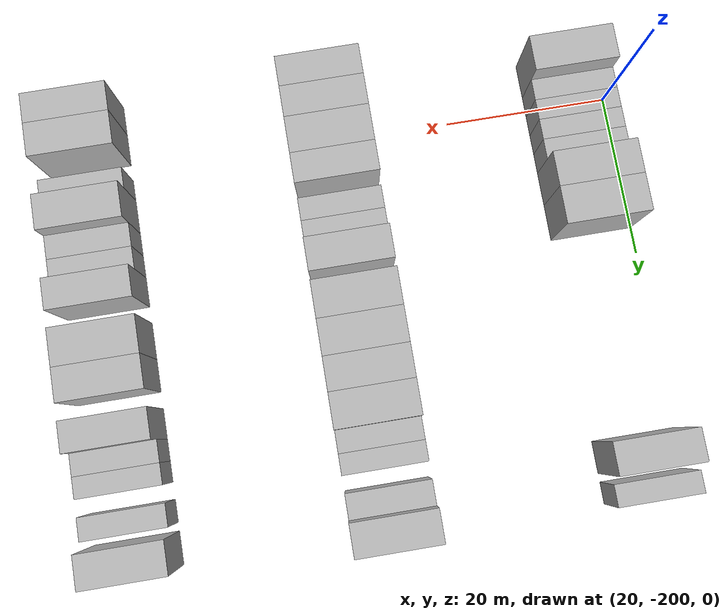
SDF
<sdf version="1.6">
 <world name="default">
  <model name="building_63">
   <static>1</static>
   <pose>25.0000 -204.0271 0 0.000000 0.000000 0.000000</pose>
   <link name="link">
    <pose>0 0 4.50 0 0 0</pose>
    <collision name="collision"><geometry><box><size>10.0000 4.2218 9.0000</size></box></geometry></collision>
    <visual name="visual">
     <cast_shadows>0</cast_shadows>
     <geometry><box><size>10.0000 4.2218 9.0000</size></box></geometry>
     <material>
      <script>
       <uri>model://HANNAS_wall/materials/scripts</uri>
       <uri>model://HANNAS_wall/materials/textures</uri>
       <name>vrc/HANNAS_wall</name>
      </script>
     </material>
    </visual>
   </link>
  </model>
  <model name="building_64">
   <static>1</static>
   <pose>25.0000 -200.6370 0 0.000000 0.000000 0.000000</pose>
   <link name="link">
    <pose>0 0 3.00 0 0 0</pose>
    <collision name="collision"><geometry><box><size>10.0000 2.5585 6.0000</size></box></geometry></collision>
    <visual name="visual">
     <cast_shadows>0</cast_shadows>
     <geometry><box><size>10.0000 2.5585 6.0000</size></box></geometry>
     <material>
      <script>
       <uri>model://HANNAS_wall/materials/scripts</uri>
       <uri>model://HANNAS_wall/materials/textures</uri>
       <name>vrc/HANNAS_wall</name>
      </script>
     </material>
    </visual>
   </link>
  </model>
  <model name="building_65">
   <static>1</static>
   <pose>25.0000 -198.1208 0 0.000000 0.000000 0.000000</pose>
   <link name="link">
    <pose>0 0 3.00 0 0 0</pose>
    <collision name="collision"><geometry><box><size>10.0000 2.4739 6.0000</size></box></geometry></collision>
    <visual name="visual">
     <cast_shadows>0</cast_shadows>
     <geometry><box><size>10.0000 2.4739 6.0000</size></box></geometry>
     <material>
      <script>
       <uri>model://HANNAS_wall/materials/scripts</uri>
       <uri>model://HANNAS_wall/materials/textures</uri>
       <name>vrc/HANNAS_wall</name>
      </script>
     </material>
    </visual>
   </link>
  </model>
  <model name="building_66">
   <static>1</static>
   <pose>25.0000 -195.6406 0 0.000000 0.000000 0.000000</pose>
   <link name="link">
    <pose>0 0 3.00 0 0 0</pose>
    <collision name="collision"><geometry><box><size>10.0000 2.4864 6.0000</size></box></geometry></collision>
    <visual name="visual">
     <cast_shadows>0</cast_shadows>
     <geometry><box><size>10.0000 2.4864 6.0000</size></box></geometry>
     <material>
      <script>
       <uri>model://HANNAS_wall/materials/scripts</uri>
       <uri>model://HANNAS_wall/materials/textures</uri>
       <name>vrc/HANNAS_wall</name>
      </script>
     </material>
    </visual>
   </link>
  </model>
  <model name="building_67">
   <static>1</static>
   <pose>25.0000 -193.1570 0 0.000000 0.000000 0.000000</pose>
   <link name="link">
    <pose>0 0 3.00 0 0 0</pose>
    <collision name="collision"><geometry><box><size>10.0000 2.4807 6.0000</size></box></geometry></collision>
    <visual name="visual">
     <cast_shadows>0</cast_shadows>
     <geometry><box><size>10.0000 2.4807 6.0000</size></box></geometry>
     <material>
      <script>
       <uri>model://HANNAS_wall/materials/scripts</uri>
       <uri>model://HANNAS_wall/materials/textures</uri>
       <name>vrc/HANNAS_wall</name>
      </script>
     </material>
    </visual>
   </link>
  </model>
  <model name="building_68">
   <static>1</static>
   <pose>25.0000 -189.8249 0 0.000000 0.000000 0.000000</pose>
   <link name="link">
    <pose>0 0 4.50 0 0 0</pose>
    <collision name="collision"><geometry><box><size>10.0000 4.1835 9.0000</size></box></geometry></collision>
    <visual name="visual">
     <cast_shadows>0</cast_shadows>
     <geometry><box><size>10.0000 4.1835 9.0000</size></box></geometry>
     <material>
      <script>
       <uri>model://HANNAS_wall/materials/scripts</uri>
       <uri>model://HANNAS_wall/materials/textures</uri>
       <name>vrc/HANNAS_wall</name>
      </script>
     </material>
    </visual>
   </link>
  </model>
  <model name="building_69">
   <static>1</static>
   <pose>25.0000 -185.4884 0 0.000000 0.000000 0.000000</pose>
   <link name="link">
    <pose>0 0 4.50 0 0 0</pose>
    <collision name="collision"><geometry><box><size>10.0000 4.4895 9.0000</size></box></geometry></collision>
    <visual name="visual">
     <cast_shadows>0</cast_shadows>
     <geometry><box><size>10.0000 4.4895 9.0000</size></box></geometry>
     <material>
      <script>
       <uri>model://HANNAS_wall/materials/scripts</uri>
       <uri>model://HANNAS_wall/materials/textures</uri>
       <name>vrc/HANNAS_wall</name>
      </script>
     </material>
    </visual>
   </link>
  </model>
  <model name="building_70">
   <static>1</static>
   <pose>25.0000 -156.4802 0 0.000000 0.000000 0.000000</pose>
   <link name="link">
    <pose>0 0 4.50 0 0 0</pose>
    <collision name="collision"><geometry><box><size>10.0000 3.8423 9.0000</size></box></geometry></collision>
    <visual name="visual">
     <cast_shadows>0</cast_shadows>
     <geometry><box><size>10.0000 3.8423 9.0000</size></box></geometry>
     <material>
      <script>
       <uri>model://HANNAS_wall/materials/scripts</uri>
       <uri>model://HANNAS_wall/materials/textures</uri>
       <name>vrc/HANNAS_wall</name>
      </script>
     </material>
    </visual>
   </link>
  </model>
  <model name="building_71">
   <static>1</static>
   <pose>25.0000 -152.2642 0 0.000000 0.000000 0.000000</pose>
   <link name="link">
    <pose>0 0 3.00 0 0 0</pose>
    <collision name="collision"><geometry><box><size>10.0000 2.5897 6.0000</size></box></geometry></collision>
    <visual name="visual">
     <cast_shadows>0</cast_shadows>
     <geometry><box><size>10.0000 2.5897 6.0000</size></box></geometry>
     <material>
      <script>
       <uri>model://HANNAS_wall/materials/scripts</uri>
       <uri>model://HANNAS_wall/materials/textures</uri>
       <name>vrc/HANNAS_wall</name>
      </script>
     </material>
    </visual>
   </link>
  </model>
  <model name="building_278">
   <static>1</static>
   <pose>55.0000 -206.6956 0 0.000000 0.000000 0.000000</pose>
   <link name="link">
    <pose>0 0 4.50 0 0 0</pose>
    <collision name="collision"><geometry><box><size>10.0000 3.6923 9.0000</size></box></geometry></collision>
    <visual name="visual">
     <cast_shadows>0</cast_shadows>
     <geometry><box><size>10.0000 3.6923 9.0000</size></box></geometry>
     <material>
      <script>
       <uri>model://HANNAS_wall/materials/scripts</uri>
       <uri>model://HANNAS_wall/materials/textures</uri>
       <name>vrc/HANNAS_wall</name>
      </script>
     </material>
    </visual>
   </link>
  </model>
  <model name="building_279">
   <static>1</static>
   <pose>55.0000 -202.9609 0 0.000000 0.000000 0.000000</pose>
   <link name="link">
    <pose>0 0 4.50 0 0 0</pose>
    <collision name="collision"><geometry><box><size>10.0000 3.7769 9.0000</size></box></geometry></collision>
    <visual name="visual">
     <cast_shadows>0</cast_shadows>
     <geometry><box><size>10.0000 3.7769 9.0000</size></box></geometry>
     <material>
      <script>
       <uri>model://HANNAS_wall/materials/scripts</uri>
       <uri>model://HANNAS_wall/materials/textures</uri>
       <name>vrc/HANNAS_wall</name>
      </script>
     </material>
    </visual>
   </link>
  </model>
  <model name="building_280">
   <static>1</static>
   <pose>55.0000 -198.8731 0 0.000000 0.000000 0.000000</pose>
   <link name="link">
    <pose>0 0 4.50 0 0 0</pose>
    <collision name="collision"><geometry><box><size>10.0000 4.3986 9.0000</size></box></geometry></collision>
    <visual name="visual">
     <cast_shadows>0</cast_shadows>
     <geometry><box><size>10.0000 4.3986 9.0000</size></box></geometry>
     <material>
      <script>
       <uri>model://HANNAS_wall/materials/scripts</uri>
       <uri>model://HANNAS_wall/materials/textures</uri>
       <name>vrc/HANNAS_wall</name>
      </script>
     </material>
    </visual>
   </link>
  </model>
  <model name="building_281">
   <static>1</static>
   <pose>55.0000 -194.8589 0 0.000000 0.000000 0.000000</pose>
   <link name="link">
    <pose>0 0 4.50 0 0 0</pose>
    <collision name="collision"><geometry><box><size>10.0000 3.6298 9.0000</size></box></geometry></collision>
    <visual name="visual">
     <cast_shadows>0</cast_shadows>
     <geometry><box><size>10.0000 3.6298 9.0000</size></box></geometry>
     <material>
      <script>
       <uri>model://HANNAS_wall/materials/scripts</uri>
       <uri>model://HANNAS_wall/materials/textures</uri>
       <name>vrc/HANNAS_wall</name>
      </script>
     </material>
    </visual>
   </link>
  </model>
  <model name="building_282">
   <static>1</static>
   <pose>55.0000 -190.6634 0 0.000000 0.000000 0.000000</pose>
   <link name="link">
    <pose>0 0 3.00 0 0 0</pose>
    <collision name="collision"><geometry><box><size>10.0000 2.7612 6.0000</size></box></geometry></collision>
    <visual name="visual">
     <cast_shadows>0</cast_shadows>
     <geometry><box><size>10.0000 2.7612 6.0000</size></box></geometry>
     <material>
      <script>
       <uri>model://HANNAS_wall/materials/scripts</uri>
       <uri>model://HANNAS_wall/materials/textures</uri>
       <name>vrc/HANNAS_wall</name>
      </script>
     </material>
    </visual>
   </link>
  </model>
  <model name="building_283">
   <static>1</static>
   <pose>55.0000 -187.9554 0 0.000000 0.000000 0.000000</pose>
   <link name="link">
    <pose>0 0 3.00 0 0 0</pose>
    <collision name="collision"><geometry><box><size>10.0000 2.6546 6.0000</size></box></geometry></collision>
    <visual name="visual">
     <cast_shadows>0</cast_shadows>
     <geometry><box><size>10.0000 2.6546 6.0000</size></box></geometry>
     <material>
      <script>
       <uri>model://HANNAS_wall/materials/scripts</uri>
       <uri>model://HANNAS_wall/materials/textures</uri>
       <name>vrc/HANNAS_wall</name>
      </script>
     </material>
    </visual>
   </link>
  </model>
  <model name="building_284">
   <static>1</static>
   <pose>55.0000 -184.6296 0 0.000000 0.000000 0.000000</pose>
   <link name="link">
    <pose>0 0 4.50 0 0 0</pose>
    <collision name="collision"><geometry><box><size>10.0000 3.9971 9.0000</size></box></geometry></collision>
    <visual name="visual">
     <cast_shadows>0</cast_shadows>
     <geometry><box><size>10.0000 3.9971 9.0000</size></box></geometry>
     <material>
      <script>
       <uri>model://HANNAS_wall/materials/scripts</uri>
       <uri>model://HANNAS_wall/materials/textures</uri>
       <name>vrc/HANNAS_wall</name>
      </script>
     </material>
    </visual>
   </link>
  </model>
  <model name="building_285">
   <static>1</static>
   <pose>55.0000 -179.3995 0 0.000000 0.000000 0.000000</pose>
   <link name="link">
    <pose>0 0 4.50 0 0 0</pose>
    <collision name="collision"><geometry><box><size>10.0000 4.4630 9.0000</size></box></geometry></collision>
    <visual name="visual">
     <cast_shadows>0</cast_shadows>
     <geometry><box><size>10.0000 4.4630 9.0000</size></box></geometry>
     <material>
      <script>
       <uri>model://HANNAS_wall/materials/scripts</uri>
       <uri>model://HANNAS_wall/materials/textures</uri>
       <name>vrc/HANNAS_wall</name>
      </script>
     </material>
    </visual>
   </link>
  </model>
  <model name="building_286">
   <static>1</static>
   <pose>55.0000 -175.0278 0 0.000000 0.000000 0.000000</pose>
   <link name="link">
    <pose>0 0 4.50 0 0 0</pose>
    <collision name="collision"><geometry><box><size>10.0000 4.2806 9.0000</size></box></geometry></collision>
    <visual name="visual">
     <cast_shadows>0</cast_shadows>
     <geometry><box><size>10.0000 4.2806 9.0000</size></box></geometry>
     <material>
      <script>
       <uri>model://HANNAS_wall/materials/scripts</uri>
       <uri>model://HANNAS_wall/materials/textures</uri>
       <name>vrc/HANNAS_wall</name>
      </script>
     </material>
    </visual>
   </link>
  </model>
  <model name="building_287">
   <static>1</static>
   <pose>55.0000 -170.8744 0 0.000000 0.000000 0.000000</pose>
   <link name="link">
    <pose>0 0 4.50 0 0 0</pose>
    <collision name="collision"><geometry><box><size>10.0000 4.0261 9.0000</size></box></geometry></collision>
    <visual name="visual">
     <cast_shadows>0</cast_shadows>
     <geometry><box><size>10.0000 4.0261 9.0000</size></box></geometry>
     <material>
      <script>
       <uri>model://HANNAS_wall/materials/scripts</uri>
       <uri>model://HANNAS_wall/materials/textures</uri>
       <name>vrc/HANNAS_wall</name>
      </script>
     </material>
    </visual>
   </link>
  </model>
  <model name="building_288">
   <static>1</static>
   <pose>55.0000 -166.7470 0 0.000000 0.000000 0.000000</pose>
   <link name="link">
    <pose>0 0 4.50 0 0 0</pose>
    <collision name="collision"><geometry><box><size>10.0000 4.2286 9.0000</size></box></geometry></collision>
    <visual name="visual">
     <cast_shadows>0</cast_shadows>
     <geometry><box><size>10.0000 4.2286 9.0000</size></box></geometry>
     <material>
      <script>
       <uri>model://HANNAS_wall/materials/scripts</uri>
       <uri>model://HANNAS_wall/materials/textures</uri>
       <name>vrc/HANNAS_wall</name>
      </script>
     </material>
    </visual>
   </link>
  </model>
  <model name="building_289">
   <static>1</static>
   <pose>55.0000 -163.2915 0 0.000000 0.000000 0.000000</pose>
   <link name="link">
    <pose>0 0 3.00 0 0 0</pose>
    <collision name="collision"><geometry><box><size>10.0000 2.6824 6.0000</size></box></geometry></collision>
    <visual name="visual">
     <cast_shadows>0</cast_shadows>
     <geometry><box><size>10.0000 2.6824 6.0000</size></box></geometry>
     <material>
      <script>
       <uri>model://HANNAS_wall/materials/scripts</uri>
       <uri>model://HANNAS_wall/materials/textures</uri>
       <name>vrc/HANNAS_wall</name>
      </script>
     </material>
    </visual>
   </link>
  </model>
  <model name="building_290">
   <static>1</static>
   <pose>55.0000 -160.7239 0 0.000000 0.000000 0.000000</pose>
   <link name="link">
    <pose>0 0 3.00 0 0 0</pose>
    <collision name="collision"><geometry><box><size>10.0000 2.4530 6.0000</size></box></geometry></collision>
    <visual name="visual">
     <cast_shadows>0</cast_shadows>
     <geometry><box><size>10.0000 2.4530 6.0000</size></box></geometry>
     <material>
      <script>
       <uri>model://HANNAS_wall/materials/scripts</uri>
       <uri>model://HANNAS_wall/materials/textures</uri>
       <name>vrc/HANNAS_wall</name>
      </script>
     </material>
    </visual>
   </link>
  </model>
  <model name="building_291">
   <static>1</static>
   <pose>55.0000 -156.0049 0 0.000000 0.000000 0.000000</pose>
   <link name="link">
    <pose>0 0 3.00 0 0 0</pose>
    <collision name="collision"><geometry><box><size>10.0000 2.9851 6.0000</size></box></geometry></collision>
    <visual name="visual">
     <cast_shadows>0</cast_shadows>
     <geometry><box><size>10.0000 2.9851 6.0000</size></box></geometry>
     <material>
      <script>
       <uri>model://HANNAS_wall/materials/scripts</uri>
       <uri>model://HANNAS_wall/materials/textures</uri>
       <name>vrc/HANNAS_wall</name>
      </script>
     </material>
    </visual>
   </link>
  </model>
  <model name="building_292">
   <static>1</static>
   <pose>55.0000 -152.5601 0 0.000000 0.000000 0.000000</pose>
   <link name="link">
    <pose>0 0 4.50 0 0 0</pose>
    <collision name="collision"><geometry><box><size>10.0000 3.9045 9.0000</size></box></geometry></collision>
    <visual name="visual">
     <cast_shadows>0</cast_shadows>
     <geometry><box><size>10.0000 3.9045 9.0000</size></box></geometry>
     <material>
      <script>
       <uri>model://HANNAS_wall/materials/scripts</uri>
       <uri>model://HANNAS_wall/materials/textures</uri>
       <name>vrc/HANNAS_wall</name>
      </script>
     </material>
    </visual>
   </link>
  </model>
  <model name="building_503">
   <static>1</static>
   <pose>85.0000 -207.0551 0 0.000000 0.000000 0.000000</pose>
   <link name="link">
    <pose>0 0 4.50 0 0 0</pose>
    <collision name="collision"><geometry><box><size>10.0000 3.6243 9.0000</size></box></geometry></collision>
    <visual name="visual">
     <cast_shadows>0</cast_shadows>
     <geometry><box><size>10.0000 3.6243 9.0000</size></box></geometry>
     <material>
      <script>
       <uri>model://HANNAS_wall/materials/scripts</uri>
       <uri>model://HANNAS_wall/materials/textures</uri>
       <name>vrc/HANNAS_wall</name>
      </script>
     </material>
    </visual>
   </link>
  </model>
  <model name="building_504">
   <static>1</static>
   <pose>85.0000 -203.2141 0 0.000000 0.000000 0.000000</pose>
   <link name="link">
    <pose>0 0 4.50 0 0 0</pose>
    <collision name="collision"><geometry><box><size>10.0000 4.0578 9.0000</size></box></geometry></collision>
    <visual name="visual">
     <cast_shadows>0</cast_shadows>
     <geometry><box><size>10.0000 4.0578 9.0000</size></box></geometry>
     <material>
      <script>
       <uri>model://HANNAS_wall/materials/scripts</uri>
       <uri>model://HANNAS_wall/materials/textures</uri>
       <name>vrc/HANNAS_wall</name>
      </script>
     </material>
    </visual>
   </link>
  </model>
  <model name="building_505">
   <static>1</static>
   <pose>85.0000 -197.9094 0 0.000000 0.000000 0.000000</pose>
   <link name="link">
    <pose>0 0 3.00 0 0 0</pose>
    <collision name="collision"><geometry><box><size>10.0000 2.5516 6.0000</size></box></geometry></collision>
    <visual name="visual">
     <cast_shadows>0</cast_shadows>
     <geometry><box><size>10.0000 2.5516 6.0000</size></box></geometry>
     <material>
      <script>
       <uri>model://HANNAS_wall/materials/scripts</uri>
       <uri>model://HANNAS_wall/materials/textures</uri>
       <name>vrc/HANNAS_wall</name>
      </script>
     </material>
    </visual>
   </link>
  </model>
  <model name="building_506">
   <static>1</static>
   <pose>85.0000 -194.5166 0 0.000000 0.000000 0.000000</pose>
   <link name="link">
    <pose>0 0 4.50 0 0 0</pose>
    <collision name="collision"><geometry><box><size>10.0000 4.2339 9.0000</size></box></geometry></collision>
    <visual name="visual">
     <cast_shadows>0</cast_shadows>
     <geometry><box><size>10.0000 4.2339 9.0000</size></box></geometry>
     <material>
      <script>
       <uri>model://HANNAS_wall/materials/scripts</uri>
       <uri>model://HANNAS_wall/materials/textures</uri>
       <name>vrc/HANNAS_wall</name>
      </script>
     </material>
    </visual>
   </link>
  </model>
  <model name="building_507">
   <static>1</static>
   <pose>85.0000 -190.9619 0 0.000000 0.000000 0.000000</pose>
   <link name="link">
    <pose>0 0 3.00 0 0 0</pose>
    <collision name="collision"><geometry><box><size>10.0000 2.8755 6.0000</size></box></geometry></collision>
    <visual name="visual">
     <cast_shadows>0</cast_shadows>
     <geometry><box><size>10.0000 2.8755 6.0000</size></box></geometry>
     <material>
      <script>
       <uri>model://HANNAS_wall/materials/scripts</uri>
       <uri>model://HANNAS_wall/materials/textures</uri>
       <name>vrc/HANNAS_wall</name>
      </script>
     </material>
    </visual>
   </link>
  </model>
  <model name="building_508">
   <static>1</static>
   <pose>85.0000 -188.1507 0 0.000000 0.000000 0.000000</pose>
   <link name="link">
    <pose>0 0 3.00 0 0 0</pose>
    <collision name="collision"><geometry><box><size>10.0000 2.7470 6.0000</size></box></geometry></collision>
    <visual name="visual">
     <cast_shadows>0</cast_shadows>
     <geometry><box><size>10.0000 2.7470 6.0000</size></box></geometry>
     <material>
      <script>
       <uri>model://HANNAS_wall/materials/scripts</uri>
       <uri>model://HANNAS_wall/materials/textures</uri>
       <name>vrc/HANNAS_wall</name>
      </script>
     </material>
    </visual>
   </link>
  </model>
  <model name="building_509">
   <static>1</static>
   <pose>85.0000 -184.9190 0 0.000000 0.000000 0.000000</pose>
   <link name="link">
    <pose>0 0 4.50 0 0 0</pose>
    <collision name="collision"><geometry><box><size>10.0000 3.7163 9.0000</size></box></geometry></collision>
    <visual name="visual">
     <cast_shadows>0</cast_shadows>
     <geometry><box><size>10.0000 3.7163 9.0000</size></box></geometry>
     <material>
      <script>
       <uri>model://HANNAS_wall/materials/scripts</uri>
       <uri>model://HANNAS_wall/materials/textures</uri>
       <name>vrc/HANNAS_wall</name>
      </script>
     </material>
    </visual>
   </link>
  </model>
  <model name="building_510">
   <static>1</static>
   <pose>85.0000 -178.8203 0 0.000000 0.000000 0.000000</pose>
   <link name="link">
    <pose>0 0 4.50 0 0 0</pose>
    <collision name="collision"><geometry><box><size>10.0000 4.4812 9.0000</size></box></geometry></collision>
    <visual name="visual">
     <cast_shadows>0</cast_shadows>
     <geometry><box><size>10.0000 4.4812 9.0000</size></box></geometry>
     <material>
      <script>
       <uri>model://HANNAS_wall/materials/scripts</uri>
       <uri>model://HANNAS_wall/materials/textures</uri>
       <name>vrc/HANNAS_wall</name>
      </script>
     </material>
    </visual>
   </link>
  </model>
  <model name="building_511">
   <static>1</static>
   <pose>85.0000 -174.5776 0 0.000000 0.000000 0.000000</pose>
   <link name="link">
    <pose>0 0 4.50 0 0 0</pose>
    <collision name="collision"><geometry><box><size>10.0000 4.0042 9.0000</size></box></geometry></collision>
    <visual name="visual">
     <cast_shadows>0</cast_shadows>
     <geometry><box><size>10.0000 4.0042 9.0000</size></box></geometry>
     <material>
      <script>
       <uri>model://HANNAS_wall/materials/scripts</uri>
       <uri>model://HANNAS_wall/materials/textures</uri>
       <name>vrc/HANNAS_wall</name>
      </script>
     </material>
    </visual>
   </link>
  </model>
  <model name="building_512">
   <static>1</static>
   <pose>85.0000 -168.7602 0 0.000000 0.000000 0.000000</pose>
   <link name="link">
    <pose>0 0 4.50 0 0 0</pose>
    <collision name="collision"><geometry><box><size>10.0000 3.6306 9.0000</size></box></geometry></collision>
    <visual name="visual">
     <cast_shadows>0</cast_shadows>
     <geometry><box><size>10.0000 3.6306 9.0000</size></box></geometry>
     <material>
      <script>
       <uri>model://HANNAS_wall/materials/scripts</uri>
       <uri>model://HANNAS_wall/materials/textures</uri>
       <name>vrc/HANNAS_wall</name>
      </script>
     </material>
    </visual>
   </link>
  </model>
  <model name="building_513">
   <static>1</static>
   <pose>85.0000 -165.6212 0 0.000000 0.000000 0.000000</pose>
   <link name="link">
    <pose>0 0 3.00 0 0 0</pose>
    <collision name="collision"><geometry><box><size>10.0000 2.6476 6.0000</size></box></geometry></collision>
    <visual name="visual">
     <cast_shadows>0</cast_shadows>
     <geometry><box><size>10.0000 2.6476 6.0000</size></box></geometry>
     <material>
      <script>
       <uri>model://HANNAS_wall/materials/scripts</uri>
       <uri>model://HANNAS_wall/materials/textures</uri>
       <name>vrc/HANNAS_wall</name>
      </script>
     </material>
    </visual>
   </link>
  </model>
  <model name="building_514">
   <static>1</static>
   <pose>85.0000 -163.0415 0 0.000000 0.000000 0.000000</pose>
   <link name="link">
    <pose>0 0 3.00 0 0 0</pose>
    <collision name="collision"><geometry><box><size>10.0000 2.5117 6.0000</size></box></geometry></collision>
    <visual name="visual">
     <cast_shadows>0</cast_shadows>
     <geometry><box><size>10.0000 2.5117 6.0000</size></box></geometry>
     <material>
      <script>
       <uri>model://HANNAS_wall/materials/scripts</uri>
       <uri>model://HANNAS_wall/materials/textures</uri>
       <name>vrc/HANNAS_wall</name>
      </script>
     </material>
    </visual>
   </link>
  </model>
  <model name="building_515">
   <static>1</static>
   <pose>85.0000 -158.4385 0 0.000000 0.000000 0.000000</pose>
   <link name="link">
    <pose>0 0 3.00 0 0 0</pose>
    <collision name="collision"><geometry><box><size>10.0000 2.6944 6.0000</size></box></geometry></collision>
    <visual name="visual">
     <cast_shadows>0</cast_shadows>
     <geometry><box><size>10.0000 2.6944 6.0000</size></box></geometry>
     <material>
      <script>
       <uri>model://HANNAS_wall/materials/scripts</uri>
       <uri>model://HANNAS_wall/materials/textures</uri>
       <name>vrc/HANNAS_wall</name>
      </script>
     </material>
    </visual>
   </link>
  </model>
  <model name="building_516">
   <static>1</static>
   <pose>85.0000 -154.1312 0 0.000000 0.000000 0.000000</pose>
   <link name="link">
    <pose>0 0 4.50 0 0 0</pose>
    <collision name="collision"><geometry><box><size>10.0000 3.9201 9.0000</size></box></geometry></collision>
    <visual name="visual">
     <cast_shadows>0</cast_shadows>
     <geometry><box><size>10.0000 3.9201 9.0000</size></box></geometry>
     <material>
      <script>
       <uri>model://HANNAS_wall/materials/scripts</uri>
       <uri>model://HANNAS_wall/materials/textures</uri>
       <name>vrc/HANNAS_wall</name>
      </script>
     </material>
    </visual>
   </link>
  </model>
 </world>
</sdf>
